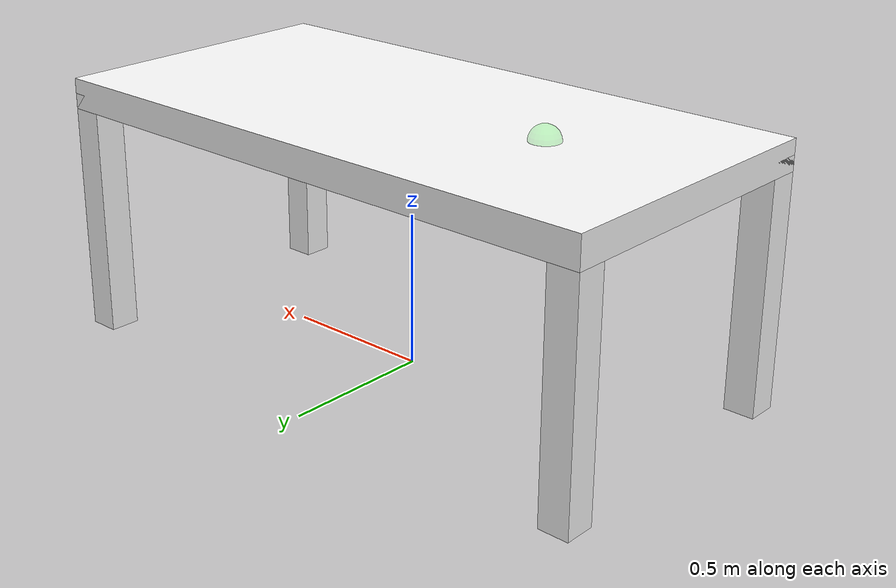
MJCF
<mujoco model="simple_table">
  <default>
    <!-- Table class for easy reuse -->
    <default class="table">
      <geom type="box" contype="1" conaffinity="1" mass="10"/>

    </default>
  </default>

  <worldbody>
    <!-- Table body -->
    <body name="table_base" pos="0 0 0 " childclass="table">
      <!-- Table top -->
      <geom name="table_top"  size="1.0 0.5 0.05" pos="0 0 0.8" rgba="1 1 1 1" solref="0.005 1" solimp="0.9 0.95 0.001"/>
      <site name="object_target" pos="-0.5 0 0.85" size="0.05" rgba="0 1 0 0.2"/>

      <!-- Table legs -->
      <geom name="table_leg1" size="0.05 0.05 0.4" pos="0.95 0.45 0.4" rgba="1 1 1 1"/>
      <geom name="table_leg2" size="0.05 0.05 0.4" pos="-0.95 0.45 0.4" rgba="1 1 1 1"/>
      <geom name="table_leg3" size="0.05 0.05 0.4" pos="0.95 -0.45 0.4" rgba="1 1 1 1"/>
      <geom name="table_leg4" size="0.05 0.05 0.4" pos="-0.95 -0.45 0.4" rgba="1 1 1 1"/>
    </body>
  </worldbody>
</mujoco>
